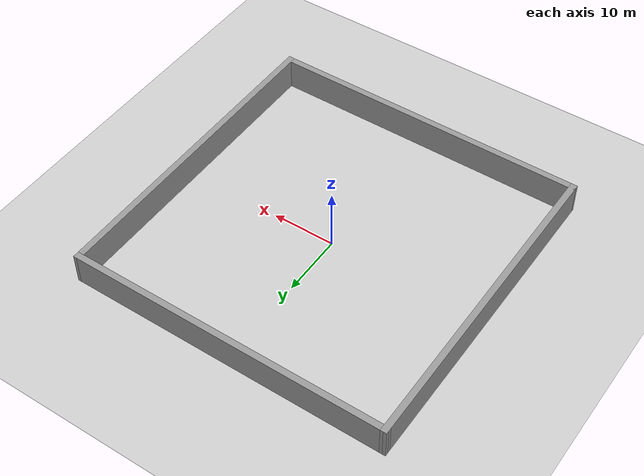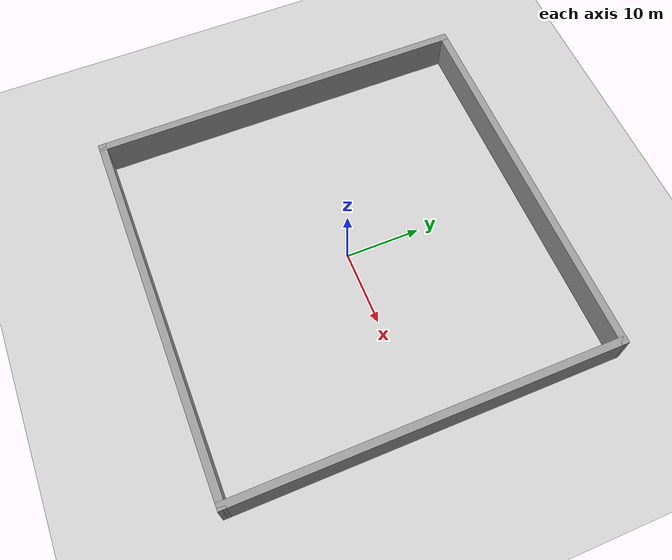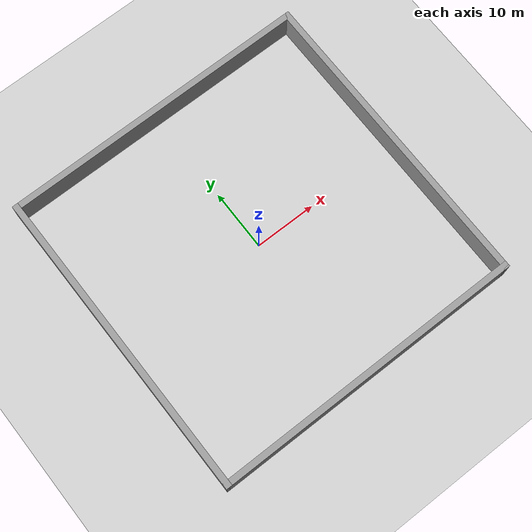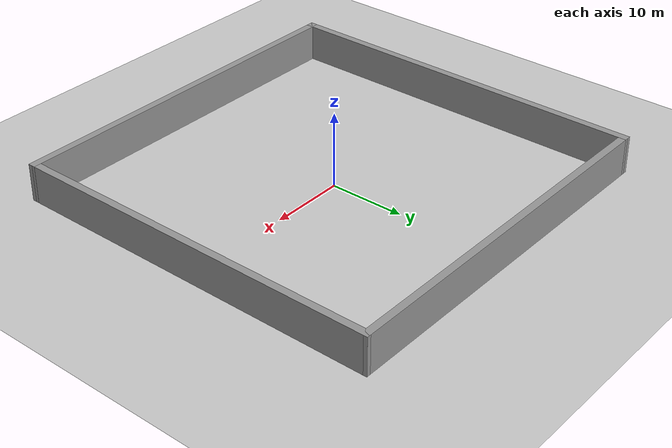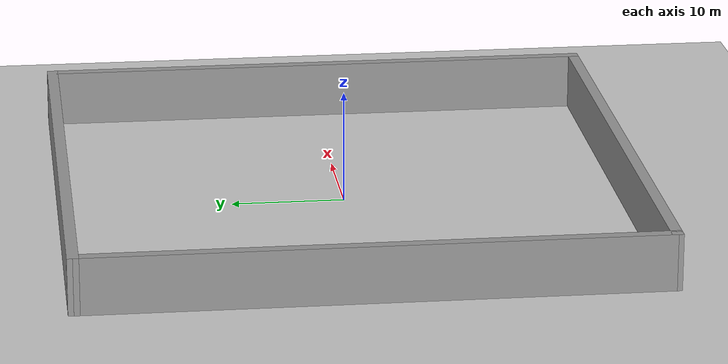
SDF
<?xml version="1.0"?>

<sdf version="1.6">
	<world name="default">
		<include>
			<uri>model://sun</uri>
			<pose>0 0 250  0 0 0</pose>
		</include>

		<include>
			<uri>model://ground_plane</uri>
		</include>

		<include>
			<uri>model://map1</uri>
			<name>map1</name>
			<pose>0 0 0  0 0 0</pose>
		</include>

	</world>
</sdf>

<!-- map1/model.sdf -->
<sdf version='1.7'>
  <model name='map1'>
    <pose>0 0.054001 0 0 -0 0</pose>
    <link name='Wall_3'>
      <collision name='Wall_3_Collision'>
        <geometry>
          <box>
            <size>51 1 5</size>
          </box>
        </geometry>
        <pose>0 0 2.5 0 -0 0</pose>
      </collision>
      <visual name='Wall_3_Visual'>
        <pose>0 0 2.5 0 -0 0</pose>
        <geometry>
          <box>
            <size>51 1 5</size>
          </box>
        </geometry>
        <material>
          <script>
            <uri>file://media/materials/scripts/gazebo.material</uri>
            <name>Gazebo/Grey</name>
          </script>
          <ambient>1 1 1 1</ambient>
        </material>
        <meta>
          <layer>0</layer>
        </meta>
      </visual>
      <pose>-25 0.053999 0 0 -0 -1.5708</pose>
    </link>
    <link name='Wall_4'>
      <collision name='Wall_4_Collision'>
        <geometry>
          <box>
            <size>51 1 5</size>
          </box>
        </geometry>
        <pose>0 0 2.5 0 -0 0</pose>
      </collision>
      <visual name='Wall_4_Visual'>
        <pose>0 0 2.5 0 -0 0</pose>
        <geometry>
          <box>
            <size>51 1 5</size>
          </box>
        </geometry>
        <material>
          <script>
            <uri>file://media/materials/scripts/gazebo.material</uri>
            <name>Gazebo/Grey</name>
          </script>
          <ambient>1 1 1 1</ambient>
        </material>
        <meta>
          <layer>0</layer>
        </meta>
      </visual>
      <pose>0 -25 0 0 -0 -0.00216</pose>
    </link>
    <link name='Wall_5'>
      <collision name='Wall_5_Collision'>
        <geometry>
          <box>
            <size>51 1 5</size>
          </box>
        </geometry>
        <pose>0 0 2.5 0 -0 0</pose>
      </collision>
      <visual name='Wall_5_Visual'>
        <pose>0 0 2.5 0 -0 0</pose>
        <geometry>
          <box>
            <size>51 1 5</size>
          </box>
        </geometry>
        <material>
          <script>
            <uri>file://media/materials/scripts/gazebo.material</uri>
            <name>Gazebo/Grey</name>
          </script>
          <ambient>1 1 1 1</ambient>
        </material>
        <meta>
          <layer>0</layer>
        </meta>
      </visual>
      <pose>25 -0.054001 0 0 -0 1.5708</pose>
    </link>
    <link name='Wall_6'>
      <collision name='Wall_6_Collision'>
        <geometry>
          <box>
            <size>51 1 5</size>
          </box>
        </geometry>
        <pose>0 0 2.5 0 -0 0</pose>
      </collision>
      <visual name='Wall_6_Visual'>
        <pose>0 0 2.5 0 -0 0</pose>
        <geometry>
          <box>
            <size>51 1 5</size>
          </box>
        </geometry>
        <material>
          <script>
            <uri>file://media/materials/scripts/gazebo.material</uri>
            <name>Gazebo/Grey</name>
          </script>
          <ambient>1 1 1 1</ambient>
        </material>
        <meta>
          <layer>0</layer>
        </meta>
      </visual>
      <pose>0 25 0 0 -0 3.13943</pose>
    </link>
    <static>1</static>
  </model>
</sdf>
